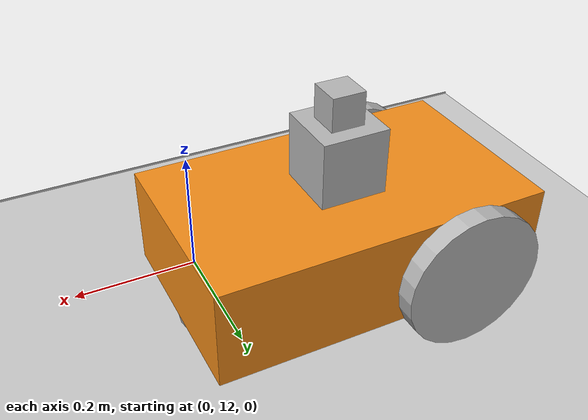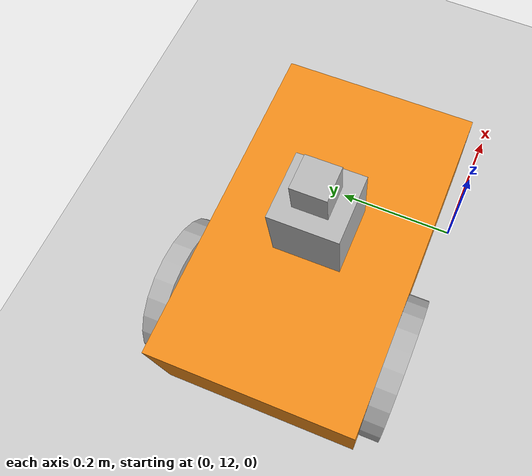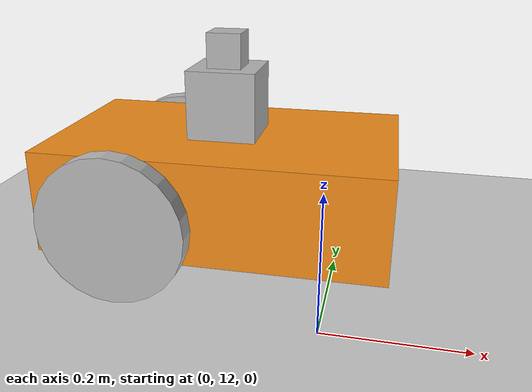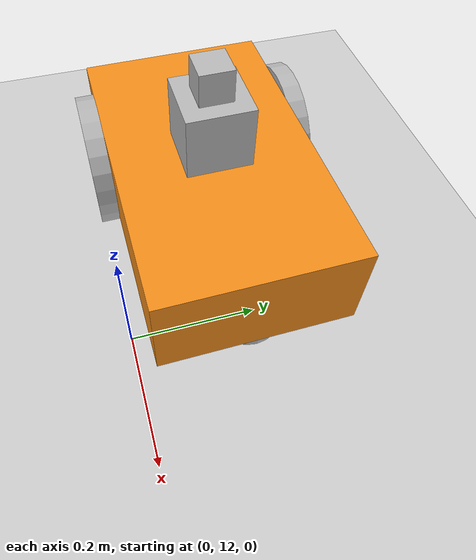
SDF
<sdf version="1.7">
 <world name="diff_drive_world">
  <model name="ground_plane">
   <static>1</static>
   <link name="link">
    <collision name="collision">
     <geometry><plane><normal>0 0 1</normal><size>100 100</size></plane></geometry>
     <surface>
      <contact><collide_bitmask>65535</collide_bitmask></contact>
      <friction><ode><mu>100</mu><mu2>50</mu2></ode></friction>
     </surface>
    </collision>
    <visual name="visual">
     <cast_shadows>0</cast_shadows>
     <geometry><plane><normal>0 0 1</normal><size>100 100</size></plane></geometry>
     <material>
      <script><uri>file://media/materials/scripts/gazebo.material</uri><name>Gazebo/Grey</name></script>
     </material>
    </visual>
   </link>
  </model>
  <light name="sun" type="directional">
   <pose>0 0 10 0 -0 0</pose>
   <diffuse>0.8 0.8 0.8 1</diffuse>
   <specular>0.2 0.2 0.2 1</specular>
   <attenuation>
    <range>1000</range>
    <constant>0.9</constant>
    <linear>0.01</linear>
    <quadratic>0.001</quadratic>
   </attenuation>
   <direction>-0.5 0.1 -0.9</direction>
   <spot><inner_angle>0</inner_angle><outer_angle>0</outer_angle><falloff>0</falloff></spot>
  </light>
  <physics name="ode_70iters" type="ode">
   <real_time_update_rate>1500</real_time_update_rate>
   <ode>
    <solver>
     <type>quick</type>
     <iters>70</iters>
     <sor>1.3</sor>
     <use_dynamic_moi_rescaling>0</use_dynamic_moi_rescaling>
    </solver>
    <constraints>
     <cfm>0</cfm>
     <erp>0.2</erp>
     <contact_max_correcting_vel>100</contact_max_correcting_vel>
     <contact_surface_layer>0.001</contact_surface_layer>
    </constraints>
   </ode>
   <max_step_size>0.001</max_step_size>
   <real_time_factor>1</real_time_factor>
  </physics>
  <gravity>0 0 -9.8</gravity>
  <magnetic_field>6e-06 2.3e-05 -4.2e-05</magnetic_field>
  <atmosphere type="adiabatic"/>
  <scene><ambient>0.4 0.4 0.4 1</ambient><background>0.7 0.7 0.7 1</background><shadows>1</shadows></scene>
  <spherical_coordinates>
   <surface_model>EARTH_WGS84</surface_model>
   <latitude_deg>0</latitude_deg>
   <longitude_deg>0</longitude_deg>
   <elevation>0</elevation>
   <heading_deg>0</heading_deg>
  </spherical_coordinates>
  <light name="user_directional_light_0" type="directional">
   <pose>2.75604 0.20108 1 0 -0 0</pose>
   <diffuse>0.5 0.5 0.5 1</diffuse>
   <specular>0.1 0.1 0.1 1</specular>
   <direction>0.1 0.1 -0.9</direction>
   <attenuation>
    <range>20</range>
    <constant>0.5</constant>
    <linear>0.01</linear>
    <quadratic>0.001</quadratic>
   </attenuation>
   <spot><inner_angle>0</inner_angle><outer_angle>0</outer_angle><falloff>0</falloff></spot>
  </light>
  <model name="diff_drive">
   <link name="base_link">
    <inertial>
     <mass>10</mass>
     <inertia>
      <ixx>0.0937526</ixx>
      <ixy>0</ixy>
      <ixz>0</ixz>
      <iyy>0.227086</iyy>
      <iyz>0</iyz>
      <izz>0.227085</izz>
     </inertia>
    </inertial>
    <collision name="base_link_fixed_joint_lump__collision_collision">
     <geometry><box><size>0.5 0.3 0.15</size></box></geometry>
    </collision>
    <collision name="base_link_fixed_joint_lump__caster_collision_collision_1">
     <pose>0.19625 0 -0.075 0 -0 0</pose>
     <geometry><sphere><radius>0.05375</radius></sphere></geometry>
    </collision>
    <collision name="base_link_fixed_joint_lump__laser_link_collision_2">
     <pose>0 0 0.125 0 -0 0</pose>
     <geometry><box><size>0.1 0.1 0.1</size></box></geometry>
    </collision>
    <collision name="base_link_fixed_joint_lump__camera_link_collision_3">
     <pose>0 0 0.2 0 -0 0</pose>
     <geometry><box><size>0.05 0.05 0.05</size></box></geometry>
    </collision>
    <visual name="base_link_visual_visual">
     <geometry><box><size>0.5 0.3 0.15</size></box></geometry>
     <material>
      <script><name>Gazebo/Orange</name><uri>file://media/materials/scripts/gazebo.material</uri></script>
     </material>
    </visual>
    <visual name="base_link_fixed_joint_lump__caster_visual_visual_1">
     <pose>0.19625 0 -0.075 0 -0 0</pose>
     <geometry><sphere><radius>0.05375</radius></sphere></geometry>
    </visual>
    <visual name="base_link_fixed_joint_lump__laser_link_visual_2">
     <pose>0 0 0.125 0 -0 0</pose>
     <geometry><box><size>0.1 0.1 0.1</size></box></geometry>
    </visual>
    <visual name="base_link_fixed_joint_lump__camera_link_visual_3">
     <pose>0 0 0.2 0 -0 0</pose>
     <geometry><box><size>0.05 0.05 0.05</size></box></geometry>
    </visual>
    <sensor name="head_hokuyo_sensor" type="ray">
     <visualize>1</visualize>
     <update_rate>20</update_rate>
     <ray>
      <scan>
       <horizontal>
        <samples>720</samples>
        <resolution>1</resolution>
        <min_angle>-1.5708</min_angle>
        <max_angle>1.5708</max_angle>
       </horizontal>
       <vertical><samples>1</samples><min_angle>0</min_angle><max_angle>0</max_angle></vertical>
      </scan>
      <range><min>0.1</min><max>10</max><resolution>0.01</resolution></range>
      <noise><type>gaussian</type><mean>0</mean><stddev>0.01</stddev></noise>
     </ray>
     <plugin name="gazebo_ros_head_hokuyo_controller" filename="libgazebo_ros_laser.so">
      <topicName>/scan</topicName>
      <frameName>/laser_link</frameName>
      <robotNamespace>/</robotNamespace>
     </plugin>
     <pose>0 0 0.125 0 -0 0</pose>
    </sensor>
    <sensor name="camera" type="camera">
     <update_rate>20</update_rate>
     <camera name="front">
      <horizontal_fov>1.39626</horizontal_fov>
      <image><width>800</width><height>800</height><format>R8G8B8</format></image>
      <clip><near>0.02</near><far>300</far></clip>
      <noise><type>gaussian</type><mean>0</mean><stddev>0.007</stddev></noise>
     </camera>
     <plugin name="camera_controller" filename="libgazebo_ros_camera.so">
      <alwaysOn>1</alwaysOn>
      <updateRate>0.0</updateRate>
      <cameraName>camera</cameraName>
      <imageTopicName>image_raw</imageTopicName>
      <cameraInfoTopicName>camera_info</cameraInfoTopicName>
      <frameName>camera_link</frameName>
      <hackBaseline>0.07</hackBaseline>
      <distortionK1>0.0</distortionK1>
      <distortionK2>0.0</distortionK2>
      <distortionK3>0.0</distortionK3>
      <distortionT1>0.0</distortionT1>
      <distortionT2>0.0</distortionT2>
      <robotNamespace>/</robotNamespace>
     </plugin>
     <pose>0 0 0.2 0 -0 0</pose>
    </sensor>
   </link>
   <joint name="left_wheel_hinge" type="revolute">
    <pose relative_to="base_link">-0.125 0.165 -0.02125 0 -0 0</pose>
    <parent>base_link</parent>
    <child>left_wheel</child>
    <axis>
     <xyz>0 1 0</xyz>
     <limit><lower>-1e+16</lower><upper>1e+16</upper></limit>
     <dynamics><spring_reference>0</spring_reference><spring_stiffness>0</spring_stiffness></dynamics>
    </axis>
   </joint>
   <link name="left_wheel">
    <pose relative_to="left_wheel_hinge">0 0 0 0 -0 0</pose>
    <inertial>
     <pose>0 0 0 -0 1.5707 1.5707</pose>
     <mass>3</mass>
     <inertia>
      <ixx>0.00889219</ixx>
      <ixy>0</ixy>
      <ixz>0</ixz>
      <iyy>0.00889219</iyy>
      <iyz>0</iyz>
      <izz>0.0173344</izz>
     </inertia>
    </inertial>
    <collision name="left_wheel_fixed_joint_lump__collision_collision">
     <pose>0 0 0 1.57089 1.57079 -3.14159</pose>
     <geometry><cylinder><length>0.03</length><radius>0.1075</radius></cylinder></geometry>
    </collision>
    <visual name="left_wheel_visual_visual">
     <pose>0 0 0 1.57089 1.57079 -3.14159</pose>
     <geometry><cylinder><length>0.03</length><radius>0.1075</radius></cylinder></geometry>
    </visual>
   </link>
   <joint name="right_wheel_hinge" type="revolute">
    <pose relative_to="base_link">-0.125 -0.165 -0.02125 0 -0 0</pose>
    <parent>base_link</parent>
    <child>right_wheel</child>
    <axis>
     <xyz>0 1 0</xyz>
     <limit><lower>-1e+16</lower><upper>1e+16</upper></limit>
     <dynamics><spring_reference>0</spring_reference><spring_stiffness>0</spring_stiffness></dynamics>
    </axis>
   </joint>
   <link name="right_wheel">
    <pose relative_to="right_wheel_hinge">0 0 0 0 -0 0</pose>
    <inertial>
     <pose>0 0 0 -0 1.5707 1.5707</pose>
     <mass>3</mass>
     <inertia>
      <ixx>0.00889219</ixx>
      <ixy>0</ixy>
      <ixz>0</ixz>
      <iyy>0.00889219</iyy>
      <iyz>0</iyz>
      <izz>0.0173344</izz>
     </inertia>
    </inertial>
    <collision name="right_wheel_fixed_joint_lump__collision_collision">
     <pose>0 0 0 1.57089 1.57079 -3.14159</pose>
     <geometry><cylinder><length>0.03</length><radius>0.1075</radius></cylinder></geometry>
    </collision>
    <visual name="right_wheel_visual_visual">
     <pose>0 0 0 1.57089 1.57079 -3.14159</pose>
     <geometry><cylinder><length>0.03</length><radius>0.1075</radius></cylinder></geometry>
    </visual>
   </link>
   <plugin name="differential_drive_controller" filename="libgazebo_ros_diff_drive.so">
    <alwaysOn>1</alwaysOn>
    <updateRate>20</updateRate>
    <leftJoint>left_wheel_hinge</leftJoint>
    <rightJoint>right_wheel_hinge</rightJoint>
    <wheelSeparation>0.3576</wheelSeparation>
    <wheelDiameter>0.215</wheelDiameter>
    <wheelTorque>10</wheelTorque>
    <commandTopic>cmd_vel</commandTopic>
    <odometryTopic>odom</odometryTopic>
    <odometryFrame>odom_link</odometryFrame>
    <robotBaseFrame>base_link</robotBaseFrame>
    <legacyMode>0</legacyMode>
    <robotNamespace>/</robotNamespace>
   </plugin>
   <plugin name="imu_plugin" filename="libgazebo_ros_imu.so">
    <alwaysOn>1</alwaysOn>
    <bodyName>base_link</bodyName>
    <topicName>imu</topicName>
    <serviceName>imu_service</serviceName>
    <gaussianNoise>0.1</gaussianNoise>
    <updateRate>20.0</updateRate>
    <robotNamespace>/</robotNamespace>
   </plugin>
   <plugin name="gps_plugin" filename="libhector_gazebo_ros_gps.so">
    <alwaysOn>1</alwaysOn>
    <updateRate>10.0</updateRate>
    <bodyName>base_link</bodyName>
    <topicName>test</topicName>
    <velocityTopicName>fix_velocity</velocityTopicName>
    <drift>5.0 5.0 5.0</drift>
    <gaussianNoise>0.1 0.1 0.1</gaussianNoise>
    <velocityDrift>0 0 0</velocityDrift>
    <velocityGaussianNoise>0.1 0.1 0.1</velocityGaussianNoise>
    <robotNamespace>/</robotNamespace>
   </plugin>
   <static>0</static>
   <plugin name="temp_plugin" filename="libtemp_plugin.so"><robotNamespace>/</robotNamespace></plugin>
   <pose>-0.165034 12.1726 0.14078 0 -0 0.013109</pose>
  </model>
  <model name="my_ground_plane">
   <static>1</static>
   <link name="link">
    <collision name="collision">
     <geometry><plane><normal>0 0 1</normal><size>8 8</size></plane></geometry>
     <surface><friction><ode><mu>100</mu><mu2>50</mu2></ode></friction></surface>
    </collision>
    <visual name="visual">
     <cast_shadows>0</cast_shadows>
     <geometry><plane><normal>0 0 1</normal><size>8 8</size></plane></geometry>
     <material>
      <script>
       <uri>model://my_ground_plane/materials/scripts</uri>
       <uri>model://my_ground_plane/materials/textures/</uri>
       <name>MyGroundPlane/Image</name>
      </script>
     </material>
    </visual>
   </link>
   <pose>-0.186335 -0.067705 0 0 -0 0</pose>
  </model>
 </world>
</sdf>
